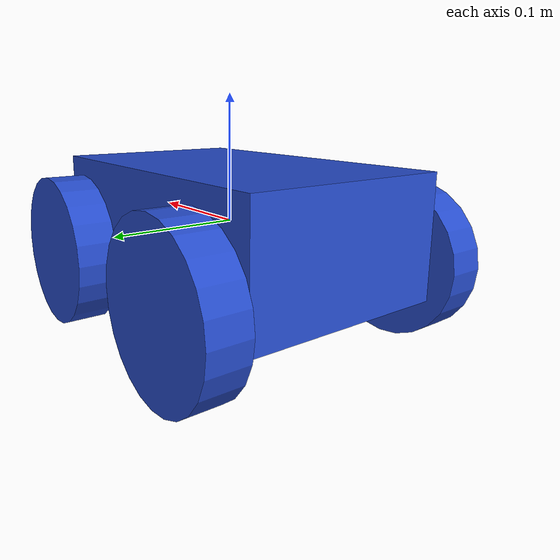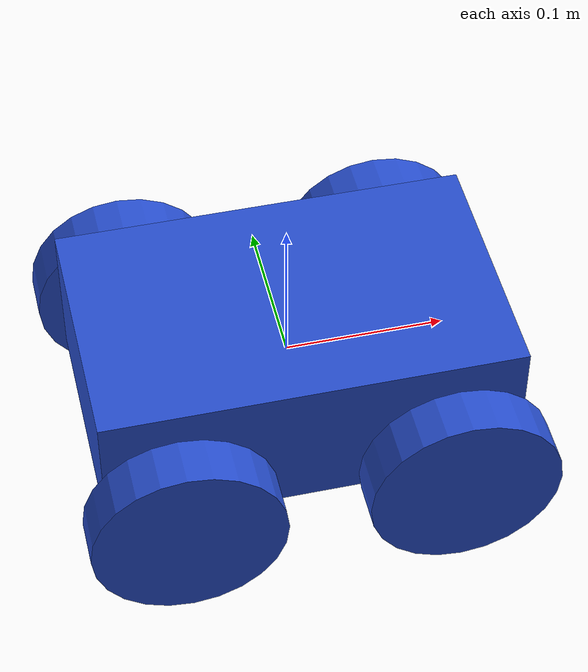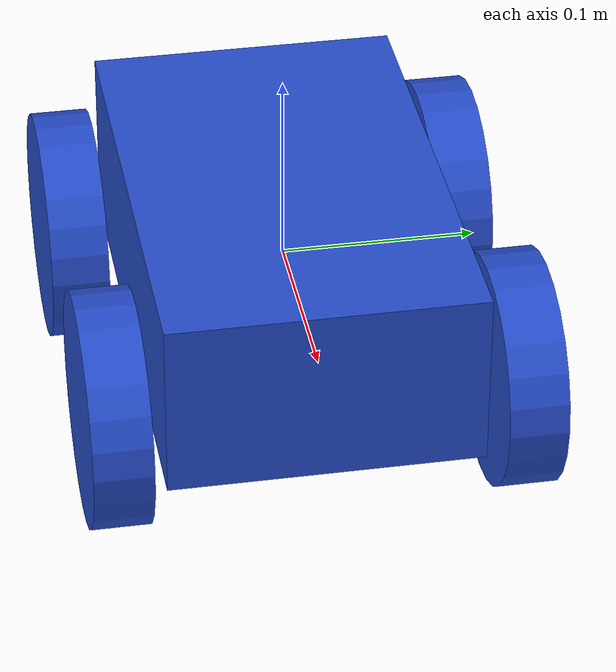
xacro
<?xml version="1.0" ?>
<robot name="m2wr" xmlns:xacro="http://www.ros.org/wiki/xacro">

  <xacro:include filename="$(find m2wr_description)/urdf/materials.xacro" />
  <xacro:include filename="$(find m2wr_description)/urdf/m2wr.gazebo" />
  <xacro:include filename="$(find m2wr_description)/urdf/macros.xacro" />

  <link name="link_chassis">
    <!-- pose and inertial -->
    <pose>0 0 0.1 0 0 0</pose>
    <inertial>
      <mass value="1.27"/>
      <origin rpy="0 0 0" xyz="0 0 0.1"/>
      <inertia ixx="0.0080696000000" ixy="0" ixz="0" iyy="0.009863333333" iyz="0" izz="0.003624333333"/>
    </inertial>
    <!-- body -->
    <collision name="collision_chassis">
      <geometry>
        <box size="0.26 0.16 0.093"/>
      </geometry>
    </collision>
    <visual>
      <origin rpy="0 0 0" xyz="0 0 0"/>
      <geometry>
        <box size="0.26 0.16 0.093"/>
      </geometry>
      <material name="blue"/>
    </visual>
    <!-- caster front -->
  </link>

  <xacro:link_wheel name="link_right_wheel" />
  <xacro:joint_wheel name="joint_right_wheel" child="link_right_wheel" origin_xyz="-0.085 0.1025 -0.0256" />

  <xacro:link_wheel name="link_right_wheel_back" />
  <xacro:joint_wheel name="joint_right_wheel_back" child="link_right_wheel_back" origin_xyz="0.085 0.1025 -0.0256" />

  <xacro:link_wheel name="link_left_wheel_back" />
  <xacro:joint_wheel name="joint_left_wheel_back" child="link_left_wheel_back" origin_xyz="0.085 -0.1025 -0.0256" />

  <xacro:link_wheel name="link_left_wheel" />
  <xacro:joint_wheel name="joint_left_wheel" child="link_left_wheel" origin_xyz="-0.085 -0.1025 -0.0256" />
</robot>

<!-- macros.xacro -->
<robot xmlns:xacro="http://www.ros.org/wiki/xacro">
    <xacro:macro name="link_wheel" params="name">
        <link name="${name}">
            <inertial>
              <mass value="0.01"/>
              <origin rpy="0 1.5707 1.5707" xyz="0 0 -0.0"/>
              <inertia ixx="0.000526666666667" ixy="0" ixz="0" iyy="0.000526666666667" iyz="0" izz="0.001"/>
            </inertial>
            <collision name="link_right_wheel_collision">
              <origin rpy="0 1.5707 1.5707" xyz="0 0 -0.0"/>
              <geometry>
                <cylinder length="0.03" radius="0.06"/>
              </geometry>
            </collision>
            <visual name="${name}_visual">
              <origin rpy="0 1.5707 1.5707" xyz="0 0 -0.0"/>
              <geometry>
                <cylinder length="0.03" radius="0.06"/>
              </geometry>
            </visual>
        </link>
    </xacro:macro>

    <xacro:macro name="joint_wheel" params="name child origin_xyz">
      <joint name="${name}" type="continuous">
        <origin rpy="0 0 0" xyz="${origin_xyz}"/>
        <child link="${child}"/>
        <parent link="link_chassis"/>
        <axis rpy="0 0 0" xyz="0 1 0"/>
        <limit effort="10000" velocity="1000"/>
        <joint_properties damping="1.0" friction="1.0"/>
      </joint>
    </xacro:macro>

    <xacro:macro name="cylinder_inertia" params="mass r l">
      <inertia  ixx="${mass*(3*r*r+l*l)/12}" ixy = "0" ixz = "0"
                iyy="${mass*(3*r*r+l*l)/12}" iyz = "0"
                izz="${mass*(r*r)/2}" />
    </xacro:macro>
</robot>
